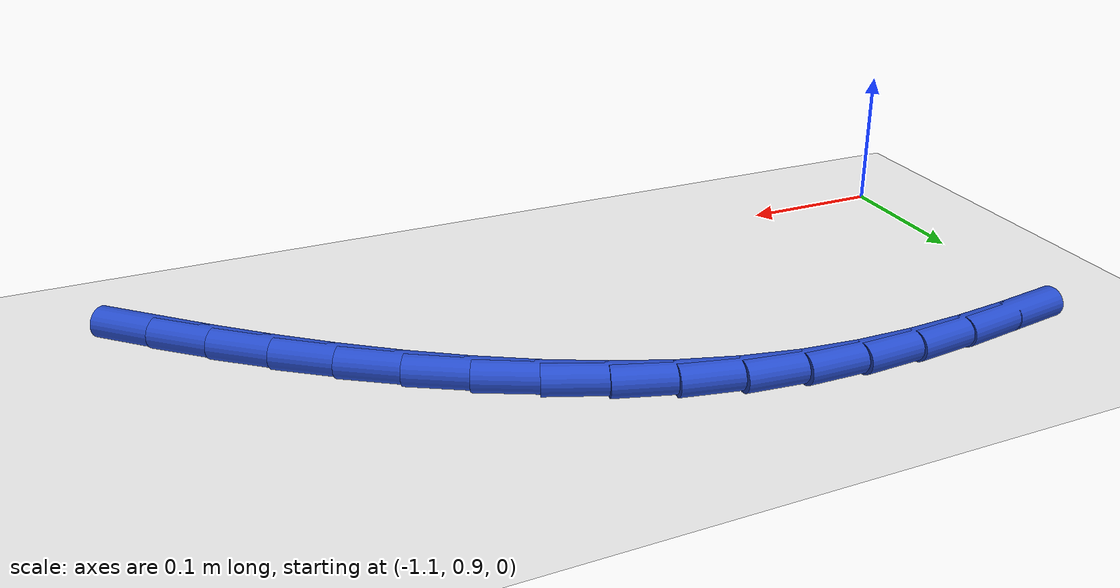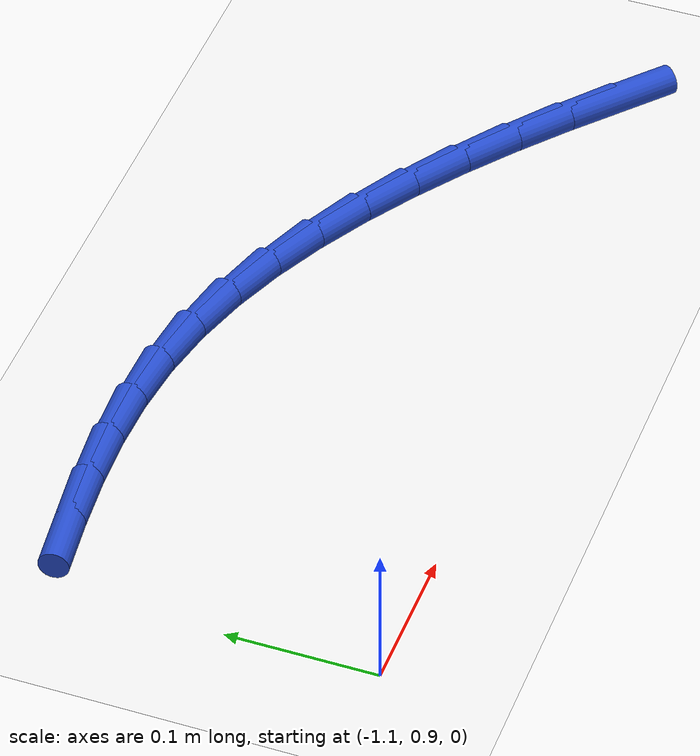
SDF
<sdf version="1.6">
 <world name="default">
  <model name="ground_plane">
   <static>1</static>
   <link name="link">
    <collision name="collision">
     <geometry><plane><normal>0 0 1</normal><size>100 100</size></plane></geometry>
     <surface><friction><ode><mu>100</mu><mu2>50</mu2></ode></friction></surface>
    </collision>
    <visual name="visual">
     <cast_shadows>0</cast_shadows>
     <geometry><plane><normal>0 0 1</normal><size>100 100</size></plane></geometry>
     <material>
      <script><uri>file://media/materials/scripts/gazebo.material</uri><name>Gazebo/WhiteGlow</name></script>
     </material>
    </visual>
   </link>
  </model>
  <model name="line">
   <link name="link_28">
    <pose>-0.5528311490762292 0.9280907938963721 0.01 0 1.57 -0.7182880727291902</pose>
    <collision name="collision">
     <geometry><cylinder><radius>0.01</radius><length>0.08</length></cylinder></geometry>
    </collision>
    <visual name="visual">
     <material>
      <script><name>Gazebo/Blue</name><uri>file://media/materials/scripts/gazebo.material</uri></script>
     </material>
     <geometry><cylinder><radius>0.01</radius><length>0.08</length></cylinder></geometry>
    </visual>
   </link>
   <link name="link_29">
    <pose>-0.5840252637040453 0.9553558105731482 0.01 0 1.57 -0.6871795574043023</pose>
    <collision name="collision">
     <geometry><cylinder><radius>0.01</radius><length>0.08</length></cylinder></geometry>
    </collision>
    <visual name="visual">
     <material>
      <script><name>Gazebo/Blue</name><uri>file://media/materials/scripts/gazebo.material</uri></script>
     </material>
     <geometry><cylinder><radius>0.01</radius><length>0.08</length></cylinder></geometry>
    </visual>
   </link>
   <link name="link_30">
    <pose>-0.616154838600543 0.981721514326745 0.01 0 1.57 -0.6510576280369035</pose>
    <collision name="collision">
     <geometry><cylinder><radius>0.01</radius><length>0.08</length></cylinder></geometry>
    </collision>
    <visual name="visual">
     <material>
      <script><name>Gazebo/Blue</name><uri>file://media/materials/scripts/gazebo.material</uri></script>
     </material>
     <geometry><cylinder><radius>0.01</radius><length>0.08</length></cylinder></geometry>
    </visual>
   </link>
   <link name="link_31">
    <pose>-0.6491497503505952 1.0068594990311723 0.01 0 1.57 -0.6093098272326608</pose>
    <collision name="collision">
     <geometry><cylinder><radius>0.01</radius><length>0.08</length></cylinder></geometry>
    </collision>
    <visual name="visual">
     <material>
      <script><name>Gazebo/Blue</name><uri>file://media/materials/scripts/gazebo.material</uri></script>
     </material>
     <geometry><cylinder><radius>0.01</radius><length>0.08</length></cylinder></geometry>
    </visual>
   </link>
   <link name="link_32">
    <pose>-0.6829398755390755 1.0304413585604402 0.01 0 1.57 -0.5612059864204975</pose>
    <collision name="collision">
     <geometry><cylinder><radius>0.01</radius><length>0.08</length></cylinder></geometry>
    </collision>
    <visual name="visual">
     <material>
      <script><name>Gazebo/Blue</name><uri>file://media/materials/scripts/gazebo.material</uri></script>
     </material>
     <geometry><cylinder><radius>0.01</radius><length>0.08</length></cylinder></geometry>
    </visual>
   </link>
   <link name="link_33">
    <pose>-0.7174550907508572 1.0521386867885583 0.01 0 1.57 -0.5059114349440352</pose>
    <collision name="collision">
     <geometry><cylinder><radius>0.01</radius><length>0.08</length></cylinder></geometry>
    </collision>
    <visual name="visual">
     <material>
      <script><name>Gazebo/Blue</name><uri>file://media/materials/scripts/gazebo.material</uri></script>
     </material>
     <geometry><cylinder><radius>0.01</radius><length>0.08</length></cylinder></geometry>
    </visual>
   </link>
   <link name="link_34">
    <pose>-0.7526252725708127 1.0716230775895366 0.01 0 1.57 -0.44252169561352517</pose>
    <collision name="collision">
     <geometry><cylinder><radius>0.01</radius><length>0.08</length></cylinder></geometry>
    </collision>
    <visual name="visual">
     <material>
      <script><name>Gazebo/Blue</name><uri>file://media/materials/scripts/gazebo.material</uri></script>
     </material>
     <geometry><cylinder><radius>0.01</radius><length>0.08</length></cylinder></geometry>
    </visual>
   </link>
   <link name="link_35">
    <pose>-0.7883802975838159 1.0885661248373846 0.01 0 1.57 -0.37013419399323594</pose>
    <collision name="collision">
     <geometry><cylinder><radius>0.01</radius><length>0.08</length></cylinder></geometry>
    </collision>
    <visual name="visual">
     <material>
      <script><name>Gazebo/Blue</name><uri>file://media/materials/scripts/gazebo.material</uri></script>
     </material>
     <geometry><cylinder><radius>0.01</radius><length>0.08</length></cylinder></geometry>
    </visual>
   </link>
   <link name="link_36">
    <pose>-0.8246500423747395 1.102639422406113 0.01 0 1.57 -0.28797578226313353</pose>
    <collision name="collision">
     <geometry><cylinder><radius>0.01</radius><length>0.08</length></cylinder></geometry>
    </collision>
    <visual name="visual">
     <material>
      <script><name>Gazebo/Blue</name><uri>file://media/materials/scripts/gazebo.material</uri></script>
     </material>
     <geometry><cylinder><radius>0.01</radius><length>0.08</length></cylinder></geometry>
    </visual>
   </link>
   <link name="link_37">
    <pose>-0.861364383528457 1.1135145641697306 0.01 0 1.57 -0.19571137689995918</pose>
    <collision name="collision">
     <geometry><cylinder><radius>0.01</radius><length>0.08</length></cylinder></geometry>
    </collision>
    <visual name="visual">
     <material>
      <script><name>Gazebo/Blue</name><uri>file://media/materials/scripts/gazebo.material</uri></script>
     </material>
     <geometry><cylinder><radius>0.01</radius><length>0.08</length></cylinder></geometry>
    </visual>
   </link>
   <link name="link_38">
    <pose>-0.8984537048446803 1.1208674864357258 0.01 0 1.57 -0.1015056464628421</pose>
    <collision name="collision">
     <geometry><cylinder><radius>0.01</radius><length>0.08</length></cylinder></geometry>
    </collision>
    <visual name="visual">
     <material>
      <script><name>Gazebo/Blue</name><uri>file://media/materials/scripts/gazebo.material</uri></script>
     </material>
     <geometry><cylinder><radius>0.01</radius><length>0.08</length></cylinder></geometry>
    </visual>
   </link>
   <link name="link_39">
    <pose>-0.9358841161064121 1.1246799874340112 0.01 0 1.57 -0.020000307486190774</pose>
    <collision name="collision">
     <geometry><cylinder><radius>0.01</radius><length>0.08</length></cylinder></geometry>
    </collision>
    <visual name="visual">
     <material>
      <script><name>Gazebo/Blue</name><uri>file://media/materials/scripts/gazebo.material</uri></script>
     </material>
     <geometry><cylinder><radius>0.01</radius><length>0.08</length></cylinder></geometry>
    </visual>
   </link>
   <link name="link_40">
    <pose>-0.973680381510958 1.125436025174752 0.01 0 1.57 0.04630639755655465</pose>
    <collision name="collision">
     <geometry><cylinder><radius>0.01</radius><length>0.08</length></cylinder></geometry>
    </collision>
    <visual name="visual">
     <material>
      <script><name>Gazebo/Blue</name><uri>file://media/materials/scripts/gazebo.material</uri></script>
     </material>
     <geometry><cylinder><radius>0.01</radius><length>0.08</length></cylinder></geometry>
    </visual>
   </link>
   <link name="link_41">
    <pose>-1.0118727145231043 1.1236662106437263 0.01 0 1.57 0.09718615228593032</pose>
    <collision name="collision">
     <geometry><cylinder><radius>0.01</radius><length>0.08</length></cylinder></geometry>
    </collision>
    <visual name="visual">
     <material>
      <script><name>Gazebo/Blue</name><uri>file://media/materials/scripts/gazebo.material</uri></script>
     </material>
     <geometry><cylinder><radius>0.01</radius><length>0.08</length></cylinder></geometry>
    </visual>
   </link>
   <link name="link_42">
    <pose>-1.0504913286076363 1.1199011548267124 0.01 0 1.57 0.13304613741664276</pose>
    <collision name="collision">
     <geometry><cylinder><radius>0.01</radius><length>0.08</length></cylinder></geometry>
    </collision>
    <visual name="visual">
     <material>
      <script><name>Gazebo/Blue</name><uri>file://media/materials/scripts/gazebo.material</uri></script>
     </material>
     <geometry><cylinder><radius>0.01</radius><length>0.08</length></cylinder></geometry>
    </visual>
   </link>
  </model>
 </world>
</sdf>
